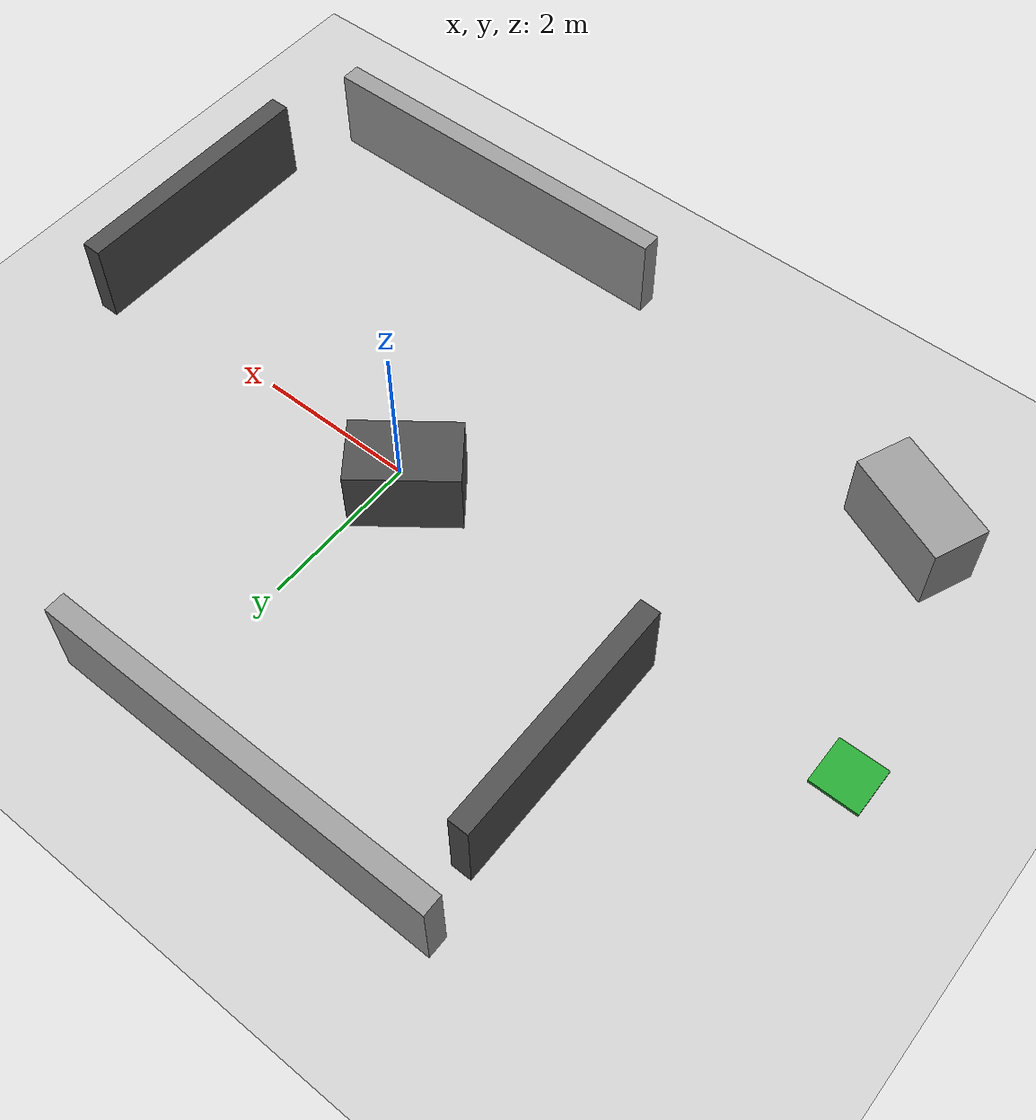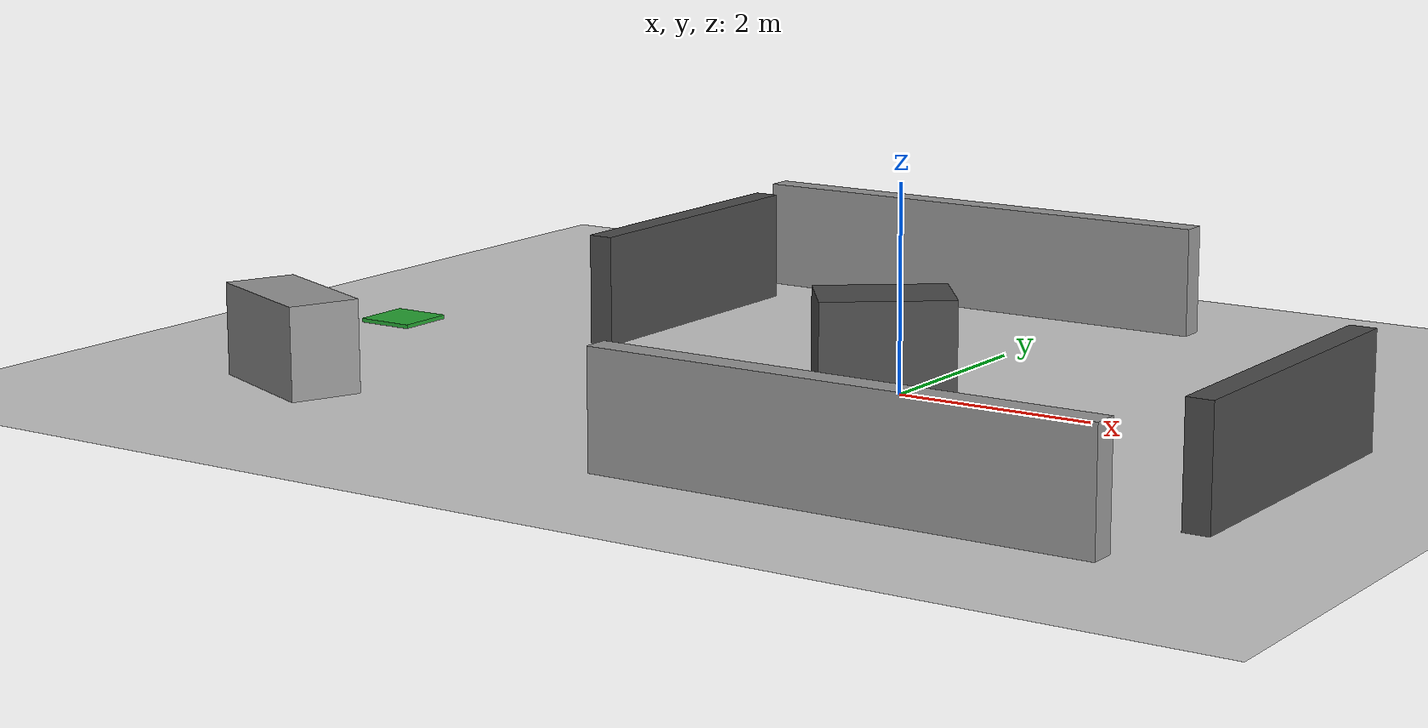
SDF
<?xml version="1.0"?>
<sdf version="1.6">
  <world name="thermal_nav_mixed_rooms">
    <physics type="ode">
      <real_time_update_rate>1000</real_time_update_rate>
      <max_step_size>0.001</max_step_size>
      <real_time_factor>1</real_time_factor>
      <ode>
        <solver>
          <type>quick</type>
          <iters>50</iters>
          <sor>1.0</sor>
          <use_dynamic_moi_rescaling>0</use_dynamic_moi_rescaling>
        </solver>
        <constraints>
          <cfm>0.0001</cfm>
          <erp>0.1</erp>
          <contact_max_correcting_vel>2.0</contact_max_correcting_vel>
          <contact_surface_layer>0.005</contact_surface_layer>
        </constraints>
      </ode>
    </physics>

    <include><uri>model://sun</uri></include>
    <include><uri>model://ground_plane</uri></include>

    <scene>
      <ambient>0.46 0.46 0.46 1</ambient>
      <background>0.17 0.20 0.21 1</background>
      <shadows>false</shadows>
    </scene>

    <gui fullscreen="0">
      <camera name="user_camera">
        <pose>0 0 22 0 1.5707 0</pose>
        <view_controller>orbit</view_controller>
      </camera>
    </gui>

    <model name="robot_start_marker">
      <static>true</static>
      <pose>-6.0 0 0 0 0 0</pose>
      <link name="link">
        <visual name="pad">
          <pose>0 0 0.02 0 0 0</pose>
          <geometry><box><size>0.6 0.6 0.04</size></box></geometry>
          <material><script>
            <uri>file://media/materials/scripts/gazebo.material</uri>
            <name>Gazebo/Green</name>
          </script></material>
        </visual>
      </link>
    </model>

    <model name="wall_north_short">
      <static>true</static>
      <pose>-1.4 3.9 0.55 0 0 0</pose>
      <link name="link">
        <collision name="collision"><geometry><box><size>5.0 0.25 1.1</size></box></geometry></collision>
        <visual name="visual"><geometry><box><size>5.0 0.25 1.1</size></box></geometry>
          <material><script><uri>file://media/materials/scripts/gazebo.material</uri><name>Gazebo/Grey</name></script></material>
        </visual>
      </link>
    </model>

    <model name="wall_south_short">
      <static>true</static>
      <pose>1.7 -3.8 0.55 0 0 0</pose>
      <link name="link">
        <collision name="collision"><geometry><box><size>4.8 0.25 1.1</size></box></geometry></collision>
        <visual name="visual"><geometry><box><size>4.8 0.25 1.1</size></box></geometry>
          <material><script><uri>file://media/materials/scripts/gazebo.material</uri><name>Gazebo/Grey</name></script></material>
        </visual>
      </link>
    </model>

    <model name="wall_vertical_west">
      <static>true</static>
      <pose>-3.6 1.7 0.55 0 0 1.5708</pose>
      <link name="link">
        <collision name="collision"><geometry><box><size>3.0 0.25 1.1</size></box></geometry></collision>
        <visual name="visual"><geometry><box><size>3.0 0.25 1.1</size></box></geometry>
          <material><script><uri>file://media/materials/scripts/gazebo.material</uri><name>Gazebo/DarkGrey</name></script></material>
        </visual>
      </link>
    </model>

    <model name="wall_vertical_east">
      <static>true</static>
      <pose>4.4 -1.2 0.55 0 0 1.5708</pose>
      <link name="link">
        <collision name="collision"><geometry><box><size>3.2 0.25 1.1</size></box></geometry></collision>
        <visual name="visual"><geometry><box><size>3.2 0.25 1.1</size></box></geometry>
          <material><script><uri>file://media/materials/scripts/gazebo.material</uri><name>Gazebo/DarkGrey</name></script></material>
        </visual>
      </link>
    </model>

    <model name="island_center">
      <static>true</static>
      <pose>-0.3 0.2 0.45 0 0 0.65</pose>
      <link name="link">
        <collision name="collision"><geometry><box><size>1.3 0.8 0.9</size></box></geometry></collision>
        <visual name="visual"><geometry><box><size>1.3 0.8 0.9</size></box></geometry>
          <material><script><uri>file://media/materials/scripts/gazebo.material</uri><name>Gazebo/DarkGrey</name></script></material>
        </visual>
      </link>
    </model>

    <model name="island_southwest">
      <static>true</static>
      <pose>-5.0 -2.8 0.45 0 0 -0.4</pose>
      <link name="link">
        <collision name="collision"><geometry><box><size>1.4 0.7 0.9</size></box></geometry></collision>
        <visual name="visual"><geometry><box><size>1.4 0.7 0.9</size></box></geometry>
          <material><script><uri>file://media/materials/scripts/gazebo.material</uri><name>Gazebo/Grey</name></script></material>
        </visual>
      </link>
    </model>
  </world>
</sdf>
